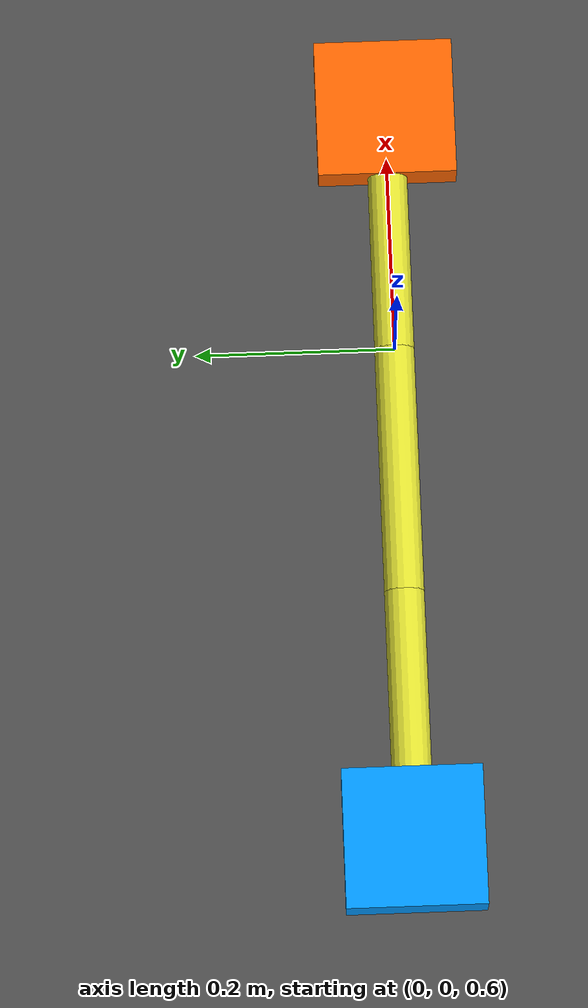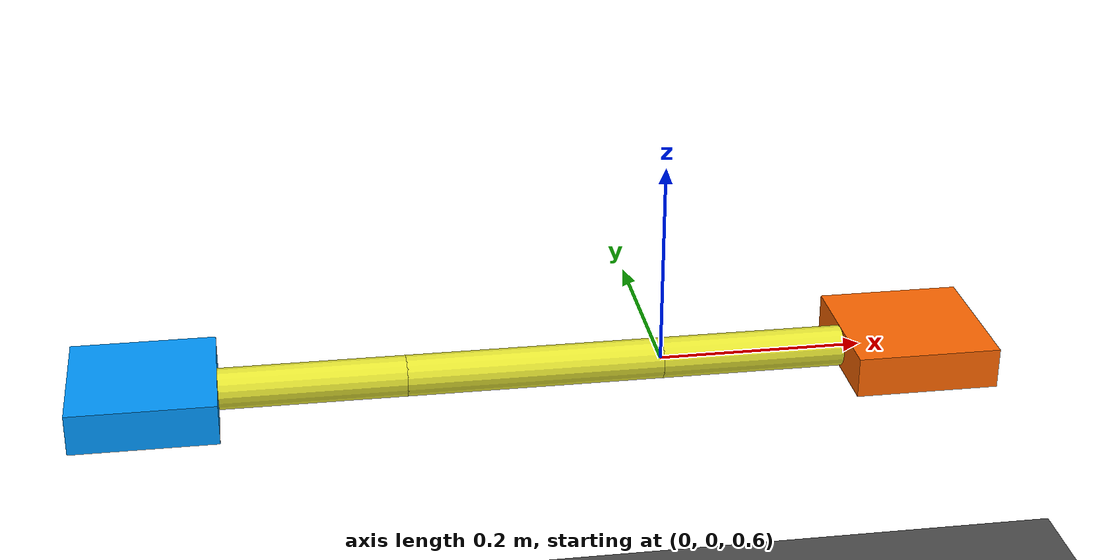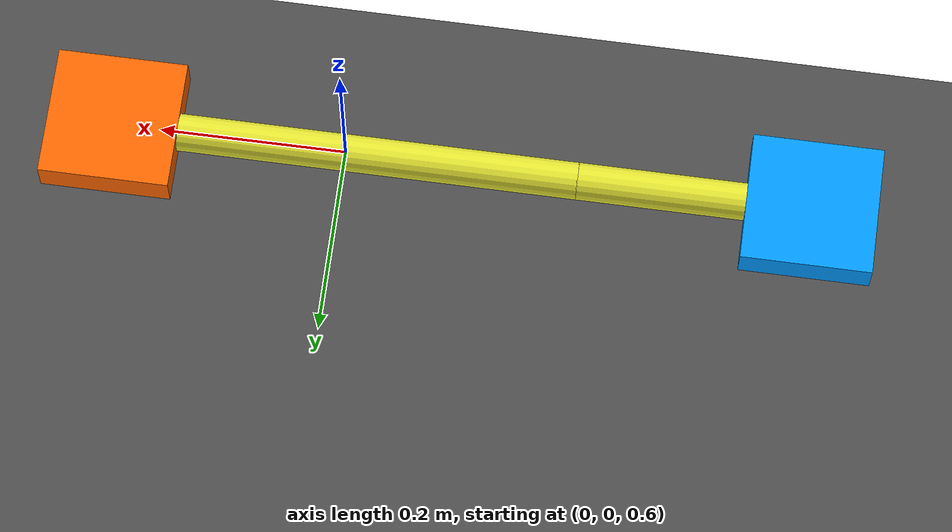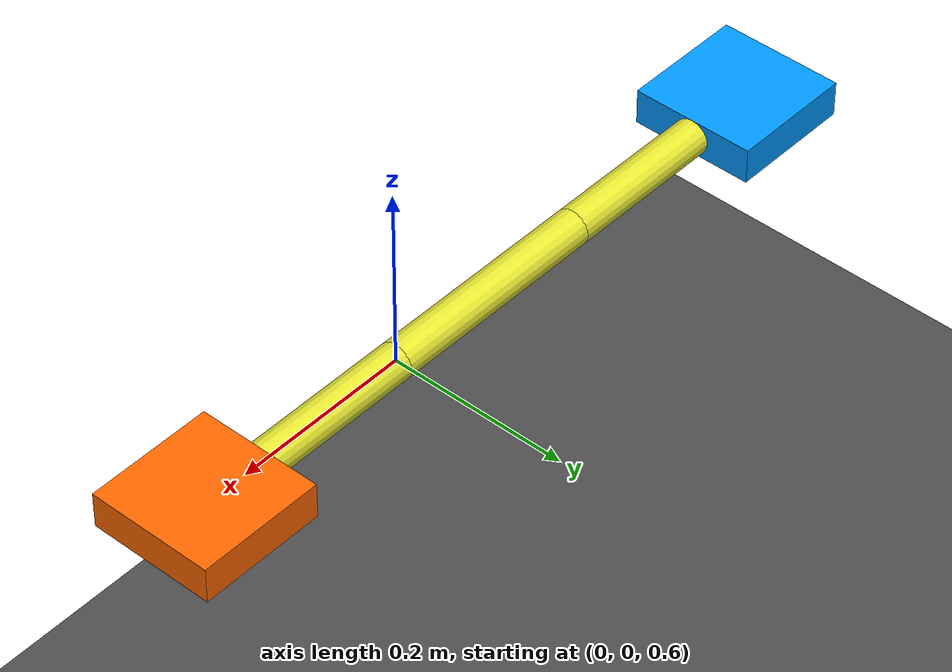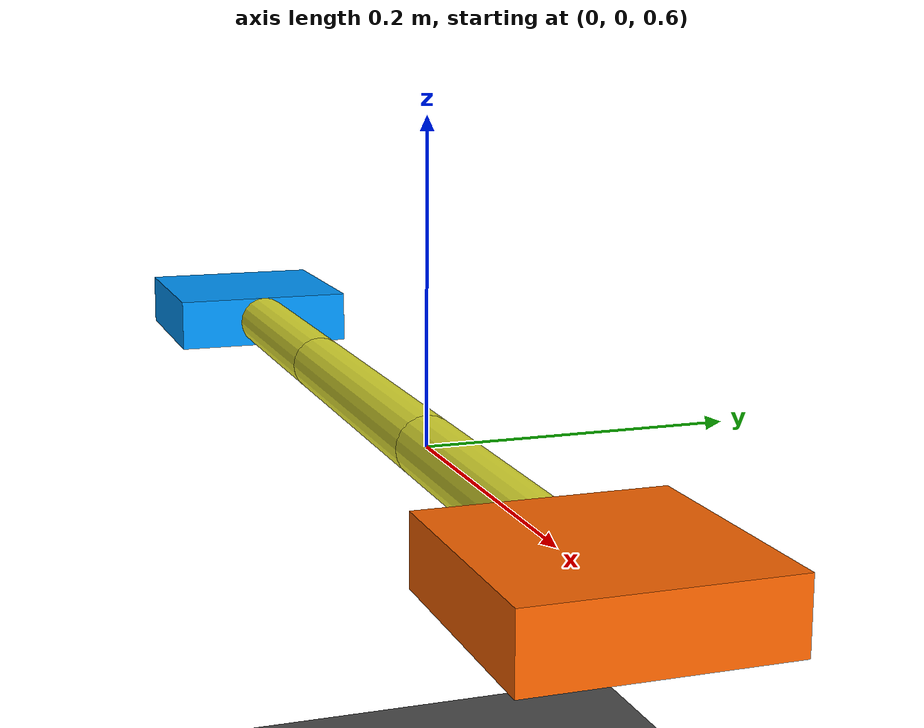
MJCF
<mujoco model="flexible_rod_dual_drone">
  <compiler angle="degree" coordinate="local"/>
  <option timestep="0.002" gravity="0 0 -9.81"/>

  <default>
    <joint damping="0.05"/>
    <geom density="1000" friction="0.5 0.1 0.1" rgba=".8 .8 .2 1"/>
  </default>

  <asset>
    <texture type="skybox" builtin="gradient"
             rgb1="1 1 1" rgb2=".6 .8 1"
             width="256" height="256"/>
  </asset>

  <worldbody>
    <!-- Luz y piso -->
    <light pos="0 0 2" dir="0 0 -1"/>
    <geom type="plane" size="5 5 0.1" rgba=".3 .3 .3 1"/>

    <!-- ============ Varilla flexible con drones fijos a los extremos ============ -->
    <body name="rod_link_1" pos="-0.5 0 0.6">
      <!-- Drone 1 fijo al extremo izquierdo -->
      <body name="drone1" pos="0 0 0">
        <geom name="drone1_body" type="box" size="0.07 0.07 0.02" rgba="0 0.6 1 1"/>
      </body>

      <!-- Primer segmento -->
      <geom type="capsule" size="0.02" fromto="0 0 0  0.25 0 0" rgba="0.9 0.9 0.2 1"/>
      <joint type="ball" damping="0.05"/>

      <!-- Segundo segmento -->
      <body name="rod_link_2" pos="0.25 0 0">
        <geom type="capsule" size="0.02" fromto="0 0 0  0.25 0 0" rgba="0.9 0.9 0.2 1"/>
        <joint type="ball" damping="0.05"/>

        <!-- Tercer segmento -->
        <body name="rod_link_3" pos="0.25 0 0">
          <geom type="capsule" size="0.02" fromto="0 0 0  0.25 0 0" rgba="0.9 0.9 0.2 1"/>
          <joint type="ball" damping="0.05"/>

          <!-- Drone 2 fijo al extremo derecho -->
          <body name="drone2" pos="0.25 0 0">
            <geom name="drone2_body" type="box" size="0.07 0.07 0.02" rgba="1 0.4 0 1"/>
          </body>
        </body>
      </body>
    </body>
  </worldbody>
</mujoco>
